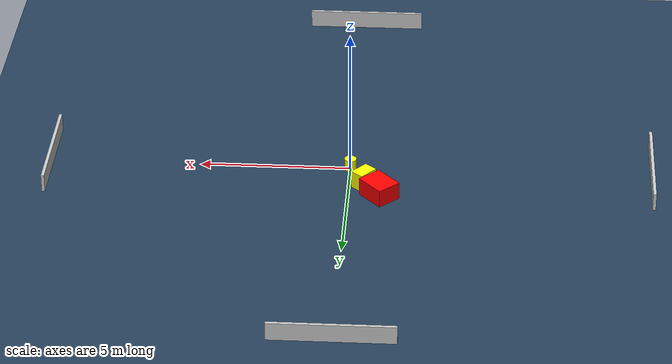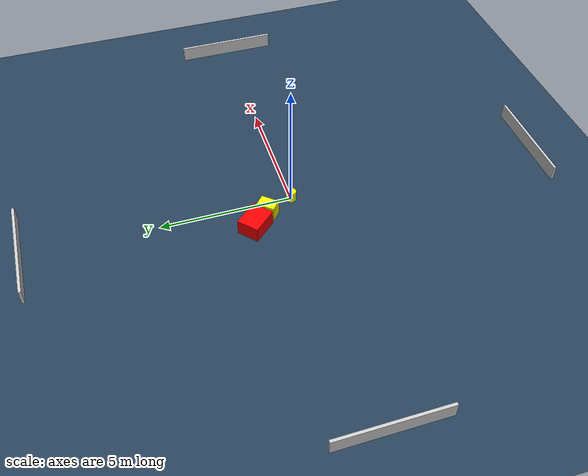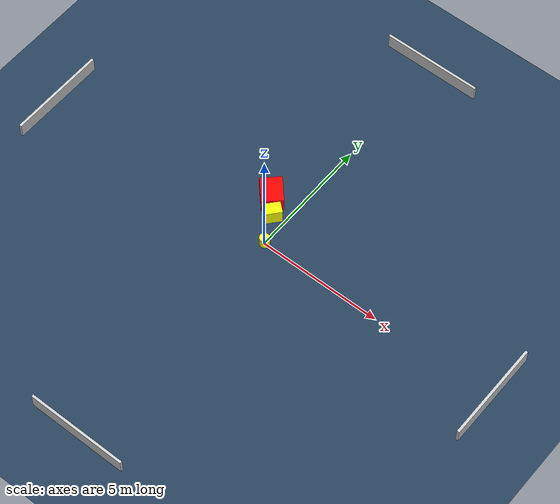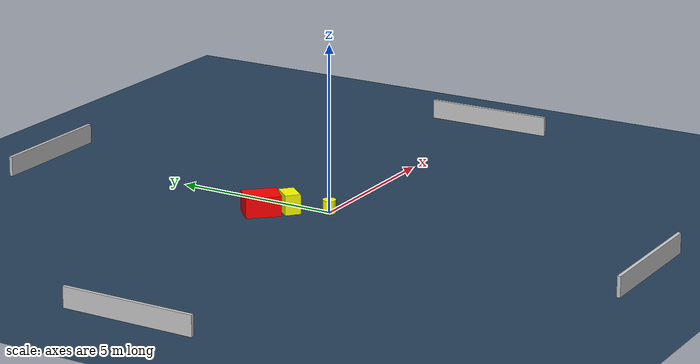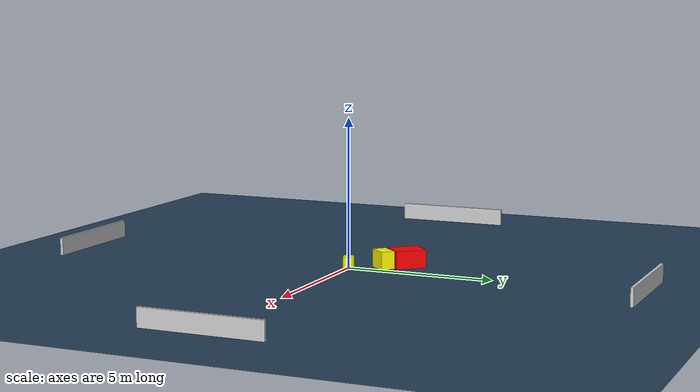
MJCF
<?xml version="1.0" ?>
<mujoco model="generated_environment">
  <option timestep="0.01" integrator="RK4" cone="elliptic"/>
  <default>
    <geom density="1"/>
  </default>
  <asset>
    <texture builtin="gradient" height="3072" name="skybox" rgb1="0.3 0.5 0.7" rgb2="0 0 0" type="skybox" width="512"/>
    <texture builtin="checker" height="300" name="groundplane" rgb1="0.2 0.3 0.4" rgb2="0.1 0.2 0.3" type="2d" width="300"/>
    <material name="groundplane" reflectance="0.2" texrepeat="5 5" texture="groundplane"/>
  </asset>
  <worldbody>
    <light dir="0 0 -1" directional="true" pos="0 0 1.5"/>
    <geom condim="3" friction="0.5 0.005 0.001" material="groundplane" name="floor" pos="0 0 0" size="0 0 0.05" type="plane"/>
    <body name="walls">
      <geom name="wall_1" condim="4" pos="-10.0 0.0 0.3" rgba="0.800000011920929 0.800000011920929 0.800000011920929 1.0" size="0.05 2.0 0.3" type="box"/>
      <geom name="wall_2" condim="4" pos="10.0 0.0 0.3" rgba="0.800000011920929 0.800000011920929 0.800000011920929 1.0" size="0.05 2.0 0.3" type="box"/>
      <geom name="wall_3" condim="4" pos="0.0 -10.0 0.3" rgba="0.800000011920929 0.800000011920929 0.800000011920929 1.0" size="2.0 0.05 0.3" type="box"/>
      <geom name="wall_4" condim="4" pos="0.0 10.0 0.3" rgba="0.800000011920929 0.800000011920929 0.800000011920929 1.0" size="2.0 0.05 0.3" type="box"/>
    </body>
    <body name="robot">
      <joint name="joint_x" type="slide" pos="0 0 0" axis="1 0 0"/>
      <joint name="joint_y" type="slide" pos="0 0 0" axis="0 1 0"/>
      <geom name="robot" type="cylinder" pos="0.0 0.0 0.2" size="0.2 0.2 0.0" mass="5.0" friction="1.0 0.005 0.0001" condim="4" rgba="1.0 1.0 0.0 1.0"/>
    </body>
    <body name="obstacle_1_movable">
      <geom name="obstacle_1_movable" condim="4" pos="-0.4951914945408599 1.0446865688968725 0.3" euler="0 0 319.3161493959889" friction="0.0 0.005 0.001" rgba="1.0 1.0 0.0 1.0" size="0.23722294770315494 0.34284080396234445 0.3" type="box" mass="0.1"/>
      <joint type="free"/>
    </body>
    <body name="obstacle_2_static">
      <geom name="obstacle_2_static" condim="4" pos="-1.0317167140007732 1.672502175424435 0.3" euler="0 0 132.34935766323517" friction="0.0 0.005 0.001" rgba="1.0 0.0 0.0 1.0" size="0.5257591483428189 0.42198043275620184 0.3" type="box"/>
    </body>
  </worldbody>
  <actuator>
    <motor name="actuator_x" joint="joint_x" gear="1" ctrlrange="-1 1"/>
    <motor name="actuator_y" joint="joint_y" gear="1" ctrlrange="-1 1"/>
  </actuator>
</mujoco>
